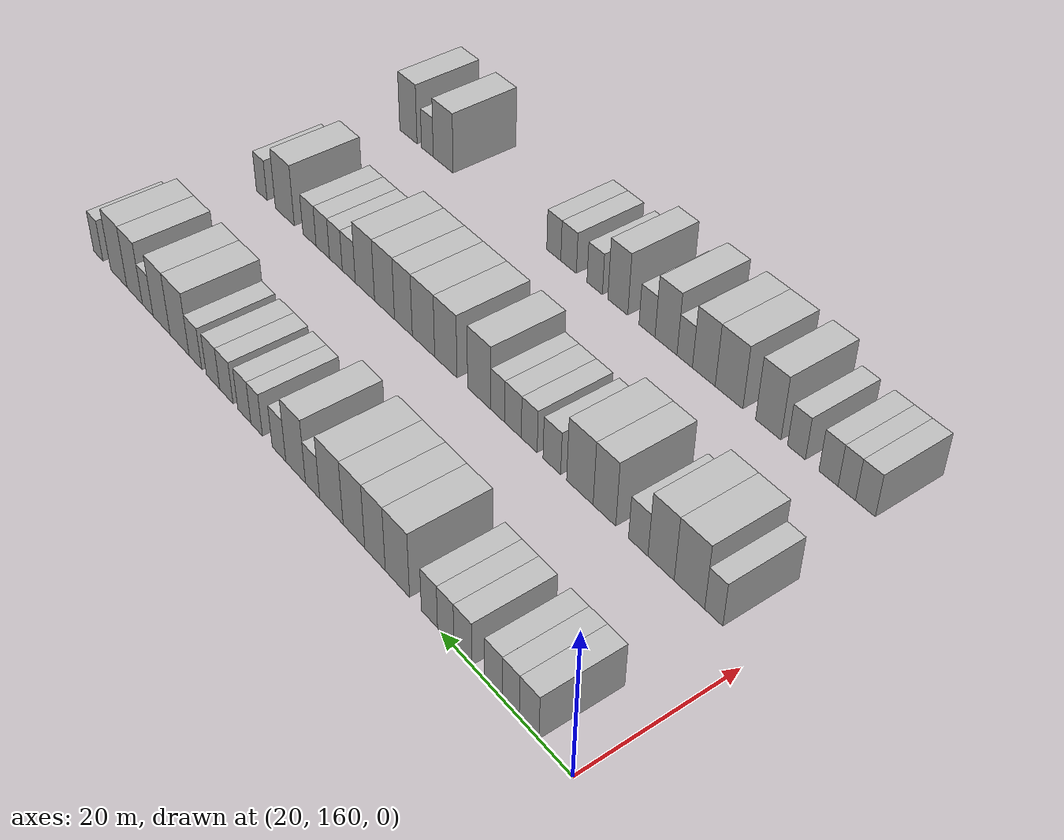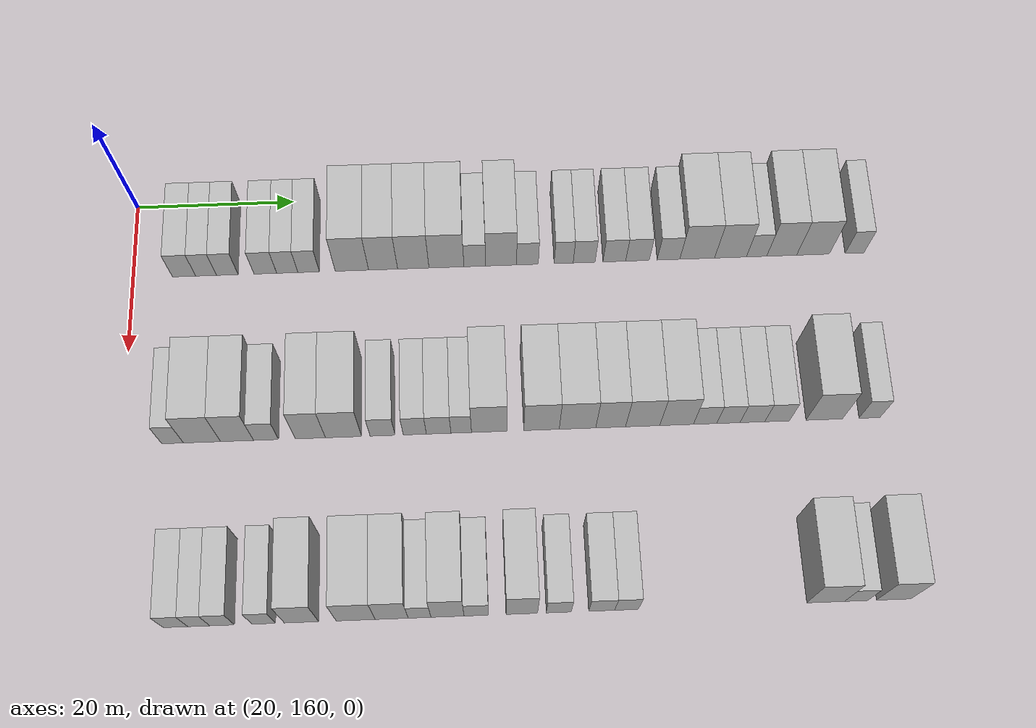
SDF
<sdf version="1.6">
 <world name="default">
  <model name="building_104">
   <static>1</static>
   <pose>25.0000 166.3553 0 0.000000 0.000000 0.000000</pose>
   <link name="link">
    <pose>0 0 3.00 0 0 0</pose>
    <collision name="collision"><geometry><box><size>10.0000 2.9161 6.0000</size></box></geometry></collision>
    <visual name="visual">
     <cast_shadows>0</cast_shadows>
     <geometry><box><size>10.0000 2.9161 6.0000</size></box></geometry>
     <material>
      <script>
       <uri>model://HANNAS_wall/materials/scripts</uri>
       <uri>model://HANNAS_wall/materials/textures</uri>
       <name>vrc/HANNAS_wall</name>
      </script>
     </material>
    </visual>
   </link>
  </model>
  <model name="building_105">
   <static>1</static>
   <pose>25.0000 169.1147 0 0.000000 0.000000 0.000000</pose>
   <link name="link">
    <pose>0 0 3.00 0 0 0</pose>
    <collision name="collision"><geometry><box><size>10.0000 2.6028 6.0000</size></box></geometry></collision>
    <visual name="visual">
     <cast_shadows>0</cast_shadows>
     <geometry><box><size>10.0000 2.6028 6.0000</size></box></geometry>
     <material>
      <script>
       <uri>model://HANNAS_wall/materials/scripts</uri>
       <uri>model://HANNAS_wall/materials/textures</uri>
       <name>vrc/HANNAS_wall</name>
      </script>
     </material>
    </visual>
   </link>
  </model>
  <model name="building_106">
   <static>1</static>
   <pose>25.0000 171.7800 0 0.000000 0.000000 0.000000</pose>
   <link name="link">
    <pose>0 0 3.00 0 0 0</pose>
    <collision name="collision"><geometry><box><size>10.0000 2.7277 6.0000</size></box></geometry></collision>
    <visual name="visual">
     <cast_shadows>0</cast_shadows>
     <geometry><box><size>10.0000 2.7277 6.0000</size></box></geometry>
     <material>
      <script>
       <uri>model://HANNAS_wall/materials/scripts</uri>
       <uri>model://HANNAS_wall/materials/textures</uri>
       <name>vrc/HANNAS_wall</name>
      </script>
     </material>
    </visual>
   </link>
  </model>
  <model name="building_107">
   <static>1</static>
   <pose>25.0000 176.5741 0 0.000000 0.000000 0.000000</pose>
   <link name="link">
    <pose>0 0 3.00 0 0 0</pose>
    <collision name="collision"><geometry><box><size>10.0000 2.8607 6.0000</size></box></geometry></collision>
    <visual name="visual">
     <cast_shadows>0</cast_shadows>
     <geometry><box><size>10.0000 2.8607 6.0000</size></box></geometry>
     <material>
      <script>
       <uri>model://HANNAS_wall/materials/scripts</uri>
       <uri>model://HANNAS_wall/materials/textures</uri>
       <name>vrc/HANNAS_wall</name>
      </script>
     </material>
    </visual>
   </link>
  </model>
  <model name="building_108">
   <static>1</static>
   <pose>25.0000 179.3434 0 0.000000 0.000000 0.000000</pose>
   <link name="link">
    <pose>0 0 3.00 0 0 0</pose>
    <collision name="collision"><geometry><box><size>10.0000 2.6778 6.0000</size></box></geometry></collision>
    <visual name="visual">
     <cast_shadows>0</cast_shadows>
     <geometry><box><size>10.0000 2.6778 6.0000</size></box></geometry>
     <material>
      <script>
       <uri>model://HANNAS_wall/materials/scripts</uri>
       <uri>model://HANNAS_wall/materials/textures</uri>
       <name>vrc/HANNAS_wall</name>
      </script>
     </material>
    </visual>
   </link>
  </model>
  <model name="building_109">
   <static>1</static>
   <pose>25.0000 182.0300 0 0.000000 0.000000 0.000000</pose>
   <link name="link">
    <pose>0 0 3.00 0 0 0</pose>
    <collision name="collision"><geometry><box><size>10.0000 2.6956 6.0000</size></box></geometry></collision>
    <visual name="visual">
     <cast_shadows>0</cast_shadows>
     <geometry><box><size>10.0000 2.6956 6.0000</size></box></geometry>
     <material>
      <script>
       <uri>model://HANNAS_wall/materials/scripts</uri>
       <uri>model://HANNAS_wall/materials/textures</uri>
       <name>vrc/HANNAS_wall</name>
      </script>
     </material>
    </visual>
   </link>
  </model>
  <model name="building_110">
   <static>1</static>
   <pose>25.0000 187.4806 0 0.000000 0.000000 0.000000</pose>
   <link name="link">
    <pose>0 0 4.50 0 0 0</pose>
    <collision name="collision"><geometry><box><size>10.0000 4.2055 9.0000</size></box></geometry></collision>
    <visual name="visual">
     <cast_shadows>0</cast_shadows>
     <geometry><box><size>10.0000 4.2055 9.0000</size></box></geometry>
     <material>
      <script>
       <uri>model://HANNAS_wall/materials/scripts</uri>
       <uri>model://HANNAS_wall/materials/textures</uri>
       <name>vrc/HANNAS_wall</name>
      </script>
     </material>
    </visual>
   </link>
  </model>
  <model name="building_111">
   <static>1</static>
   <pose>25.0000 191.4125 0 0.000000 0.000000 0.000000</pose>
   <link name="link">
    <pose>0 0 4.50 0 0 0</pose>
    <collision name="collision"><geometry><box><size>10.0000 3.6583 9.0000</size></box></geometry></collision>
    <visual name="visual">
     <cast_shadows>0</cast_shadows>
     <geometry><box><size>10.0000 3.6583 9.0000</size></box></geometry>
     <material>
      <script>
       <uri>model://HANNAS_wall/materials/scripts</uri>
       <uri>model://HANNAS_wall/materials/textures</uri>
       <name>vrc/HANNAS_wall</name>
      </script>
     </material>
    </visual>
   </link>
  </model>
  <model name="building_112">
   <static>1</static>
   <pose>25.0000 195.2253 0 0.000000 0.000000 0.000000</pose>
   <link name="link">
    <pose>0 0 4.50 0 0 0</pose>
    <collision name="collision"><geometry><box><size>10.0000 3.9674 9.0000</size></box></geometry></collision>
    <visual name="visual">
     <cast_shadows>0</cast_shadows>
     <geometry><box><size>10.0000 3.9674 9.0000</size></box></geometry>
     <material>
      <script>
       <uri>model://HANNAS_wall/materials/scripts</uri>
       <uri>model://HANNAS_wall/materials/textures</uri>
       <name>vrc/HANNAS_wall</name>
      </script>
     </material>
    </visual>
   </link>
  </model>
  <model name="building_113">
   <static>1</static>
   <pose>25.0000 199.4146 0 0.000000 0.000000 0.000000</pose>
   <link name="link">
    <pose>0 0 4.50 0 0 0</pose>
    <collision name="collision"><geometry><box><size>10.0000 4.4111 9.0000</size></box></geometry></collision>
    <visual name="visual">
     <cast_shadows>0</cast_shadows>
     <geometry><box><size>10.0000 4.4111 9.0000</size></box></geometry>
     <material>
      <script>
       <uri>model://HANNAS_wall/materials/scripts</uri>
       <uri>model://HANNAS_wall/materials/textures</uri>
       <name>vrc/HANNAS_wall</name>
      </script>
     </material>
    </visual>
   </link>
  </model>
  <model name="building_114">
   <static>1</static>
   <pose>25.0000 202.9931 0 0.000000 0.000000 0.000000</pose>
   <link name="link">
    <pose>0 0 3.00 0 0 0</pose>
    <collision name="collision"><geometry><box><size>10.0000 2.7460 6.0000</size></box></geometry></collision>
    <visual name="visual">
     <cast_shadows>0</cast_shadows>
     <geometry><box><size>10.0000 2.7460 6.0000</size></box></geometry>
     <material>
      <script>
       <uri>model://HANNAS_wall/materials/scripts</uri>
       <uri>model://HANNAS_wall/materials/textures</uri>
       <name>vrc/HANNAS_wall</name>
      </script>
     </material>
    </visual>
   </link>
  </model>
  <model name="building_115">
   <static>1</static>
   <pose>25.0000 206.3150 0 0.000000 0.000000 0.000000</pose>
   <link name="link">
    <pose>0 0 4.50 0 0 0</pose>
    <collision name="collision"><geometry><box><size>10.0000 3.8978 9.0000</size></box></geometry></collision>
    <visual name="visual">
     <cast_shadows>0</cast_shadows>
     <geometry><box><size>10.0000 3.8978 9.0000</size></box></geometry>
     <material>
      <script>
       <uri>model://HANNAS_wall/materials/scripts</uri>
       <uri>model://HANNAS_wall/materials/textures</uri>
       <name>vrc/HANNAS_wall</name>
      </script>
     </material>
    </visual>
   </link>
  </model>
  <model name="building_116">
   <static>1</static>
   <pose>25.0000 209.6416 0 0.000000 0.000000 0.000000</pose>
   <link name="link">
    <pose>0 0 3.00 0 0 0</pose>
    <collision name="collision"><geometry><box><size>10.0000 2.7554 6.0000</size></box></geometry></collision>
    <visual name="visual">
     <cast_shadows>0</cast_shadows>
     <geometry><box><size>10.0000 2.7554 6.0000</size></box></geometry>
     <material>
      <script>
       <uri>model://HANNAS_wall/materials/scripts</uri>
       <uri>model://HANNAS_wall/materials/textures</uri>
       <name>vrc/HANNAS_wall</name>
      </script>
     </material>
    </visual>
   </link>
  </model>
  <model name="building_117">
   <static>1</static>
   <pose>25.0000 214.2258 0 0.000000 0.000000 0.000000</pose>
   <link name="link">
    <pose>0 0 3.00 0 0 0</pose>
    <collision name="collision"><geometry><box><size>10.0000 2.4129 6.0000</size></box></geometry></collision>
    <visual name="visual">
     <cast_shadows>0</cast_shadows>
     <geometry><box><size>10.0000 2.4129 6.0000</size></box></geometry>
     <material>
      <script>
       <uri>model://HANNAS_wall/materials/scripts</uri>
       <uri>model://HANNAS_wall/materials/textures</uri>
       <name>vrc/HANNAS_wall</name>
      </script>
     </material>
    </visual>
   </link>
  </model>
  <model name="building_118">
   <static>1</static>
   <pose>25.0000 216.8191 0 0.000000 0.000000 0.000000</pose>
   <link name="link">
    <pose>0 0 3.00 0 0 0</pose>
    <collision name="collision"><geometry><box><size>10.0000 2.7737 6.0000</size></box></geometry></collision>
    <visual name="visual">
     <cast_shadows>0</cast_shadows>
     <geometry><box><size>10.0000 2.7737 6.0000</size></box></geometry>
     <material>
      <script>
       <uri>model://HANNAS_wall/materials/scripts</uri>
       <uri>model://HANNAS_wall/materials/textures</uri>
       <name>vrc/HANNAS_wall</name>
      </script>
     </material>
    </visual>
   </link>
  </model>
  <model name="building_119">
   <static>1</static>
   <pose>25.0000 220.6476 0 0.000000 0.000000 0.000000</pose>
   <link name="link">
    <pose>0 0 3.00 0 0 0</pose>
    <collision name="collision"><geometry><box><size>10.0000 2.8833 6.0000</size></box></geometry></collision>
    <visual name="visual">
     <cast_shadows>0</cast_shadows>
     <geometry><box><size>10.0000 2.8833 6.0000</size></box></geometry>
     <material>
      <script>
       <uri>model://HANNAS_wall/materials/scripts</uri>
       <uri>model://HANNAS_wall/materials/textures</uri>
       <name>vrc/HANNAS_wall</name>
      </script>
     </material>
    </visual>
   </link>
  </model>
  <model name="building_120">
   <static>1</static>
   <pose>25.0000 223.5836 0 0.000000 0.000000 0.000000</pose>
   <link name="link">
    <pose>0 0 3.00 0 0 0</pose>
    <collision name="collision"><geometry><box><size>10.0000 2.9889 6.0000</size></box></geometry></collision>
    <visual name="visual">
     <cast_shadows>0</cast_shadows>
     <geometry><box><size>10.0000 2.9889 6.0000</size></box></geometry>
     <material>
      <script>
       <uri>model://HANNAS_wall/materials/scripts</uri>
       <uri>model://HANNAS_wall/materials/textures</uri>
       <name>vrc/HANNAS_wall</name>
      </script>
     </material>
    </visual>
   </link>
  </model>
  <model name="building_121">
   <static>1</static>
   <pose>25.0000 227.5169 0 0.000000 0.000000 0.000000</pose>
   <link name="link">
    <pose>0 0 3.00 0 0 0</pose>
    <collision name="collision"><geometry><box><size>10.0000 2.8777 6.0000</size></box></geometry></collision>
    <visual name="visual">
     <cast_shadows>0</cast_shadows>
     <geometry><box><size>10.0000 2.8777 6.0000</size></box></geometry>
     <material>
      <script>
       <uri>model://HANNAS_wall/materials/scripts</uri>
       <uri>model://HANNAS_wall/materials/textures</uri>
       <name>vrc/HANNAS_wall</name>
      </script>
     </material>
    </visual>
   </link>
  </model>
  <model name="building_122">
   <static>1</static>
   <pose>25.0000 231.1664 0 0.000000 0.000000 0.000000</pose>
   <link name="link">
    <pose>0 0 4.50 0 0 0</pose>
    <collision name="collision"><geometry><box><size>10.0000 4.4213 9.0000</size></box></geometry></collision>
    <visual name="visual">
     <cast_shadows>0</cast_shadows>
     <geometry><box><size>10.0000 4.4213 9.0000</size></box></geometry>
     <material>
      <script>
       <uri>model://HANNAS_wall/materials/scripts</uri>
       <uri>model://HANNAS_wall/materials/textures</uri>
       <name>vrc/HANNAS_wall</name>
      </script>
     </material>
    </visual>
   </link>
  </model>
  <model name="building_123">
   <static>1</static>
   <pose>25.0000 235.3961 0 0.000000 0.000000 0.000000</pose>
   <link name="link">
    <pose>0 0 4.50 0 0 0</pose>
    <collision name="collision"><geometry><box><size>10.0000 4.0381 9.0000</size></box></geometry></collision>
    <visual name="visual">
     <cast_shadows>0</cast_shadows>
     <geometry><box><size>10.0000 4.0381 9.0000</size></box></geometry>
     <material>
      <script>
       <uri>model://HANNAS_wall/materials/scripts</uri>
       <uri>model://HANNAS_wall/materials/textures</uri>
       <name>vrc/HANNAS_wall</name>
      </script>
     </material>
    </visual>
   </link>
  </model>
  <model name="building_124">
   <static>1</static>
   <pose>25.0000 238.7110 0 0.000000 0.000000 0.000000</pose>
   <link name="link">
    <pose>0 0 3.00 0 0 0</pose>
    <collision name="collision"><geometry><box><size>10.0000 2.5919 6.0000</size></box></geometry></collision>
    <visual name="visual">
     <cast_shadows>0</cast_shadows>
     <geometry><box><size>10.0000 2.5919 6.0000</size></box></geometry>
     <material>
      <script>
       <uri>model://HANNAS_wall/materials/scripts</uri>
       <uri>model://HANNAS_wall/materials/textures</uri>
       <name>vrc/HANNAS_wall</name>
      </script>
     </material>
    </visual>
   </link>
  </model>
  <model name="building_125">
   <static>1</static>
   <pose>25.0000 241.9118 0 0.000000 0.000000 0.000000</pose>
   <link name="link">
    <pose>0 0 4.50 0 0 0</pose>
    <collision name="collision"><geometry><box><size>10.0000 3.8096 9.0000</size></box></geometry></collision>
    <visual name="visual">
     <cast_shadows>0</cast_shadows>
     <geometry><box><size>10.0000 3.8096 9.0000</size></box></geometry>
     <material>
      <script>
       <uri>model://HANNAS_wall/materials/scripts</uri>
       <uri>model://HANNAS_wall/materials/textures</uri>
       <name>vrc/HANNAS_wall</name>
      </script>
     </material>
    </visual>
   </link>
  </model>
  <model name="building_126">
   <static>1</static>
   <pose>25.0000 245.8992 0 0.000000 0.000000 0.000000</pose>
   <link name="link">
    <pose>0 0 4.50 0 0 0</pose>
    <collision name="collision"><geometry><box><size>10.0000 4.1652 9.0000</size></box></geometry></collision>
    <visual name="visual">
     <cast_shadows>0</cast_shadows>
     <geometry><box><size>10.0000 4.1652 9.0000</size></box></geometry>
     <material>
      <script>
       <uri>model://HANNAS_wall/materials/scripts</uri>
       <uri>model://HANNAS_wall/materials/textures</uri>
       <name>vrc/HANNAS_wall</name>
      </script>
     </material>
    </visual>
   </link>
  </model>
  <model name="building_127">
   <static>1</static>
   <pose>25.0000 251.1866 0 0.000000 0.000000 0.000000</pose>
   <link name="link">
    <pose>0 0 3.00 0 0 0</pose>
    <collision name="collision"><geometry><box><size>10.0000 2.4098 6.0000</size></box></geometry></collision>
    <visual name="visual">
     <cast_shadows>0</cast_shadows>
     <geometry><box><size>10.0000 2.4098 6.0000</size></box></geometry>
     <material>
      <script>
       <uri>model://HANNAS_wall/materials/scripts</uri>
       <uri>model://HANNAS_wall/materials/textures</uri>
       <name>vrc/HANNAS_wall</name>
      </script>
     </material>
    </visual>
   </link>
  </model>
  <model name="building_233">
   <static>1</static>
   <pose>47.0000 166.0406 0 0.000000 0.000000 0.000000</pose>
   <link name="link">
    <pose>0 0 3.00 0 0 0</pose>
    <collision name="collision"><geometry><box><size>10.0000 2.5984 6.0000</size></box></geometry></collision>
    <visual name="visual">
     <cast_shadows>0</cast_shadows>
     <geometry><box><size>10.0000 2.5984 6.0000</size></box></geometry>
     <material>
      <script>
       <uri>model://HANNAS_wall/materials/scripts</uri>
       <uri>model://HANNAS_wall/materials/textures</uri>
       <name>vrc/HANNAS_wall</name>
      </script>
     </material>
    </visual>
   </link>
  </model>
  <model name="building_234">
   <static>1</static>
   <pose>47.0000 169.5662 0 0.000000 0.000000 0.000000</pose>
   <link name="link">
    <pose>0 0 4.50 0 0 0</pose>
    <collision name="collision"><geometry><box><size>10.0000 4.4527 9.0000</size></box></geometry></collision>
    <visual name="visual">
     <cast_shadows>0</cast_shadows>
     <geometry><box><size>10.0000 4.4527 9.0000</size></box></geometry>
     <material>
      <script>
       <uri>model://HANNAS_wall/materials/scripts</uri>
       <uri>model://HANNAS_wall/materials/textures</uri>
       <name>vrc/HANNAS_wall</name>
      </script>
     </material>
    </visual>
   </link>
  </model>
  <model name="building_235">
   <static>1</static>
   <pose>47.0000 173.7640 0 0.000000 0.000000 0.000000</pose>
   <link name="link">
    <pose>0 0 4.50 0 0 0</pose>
    <collision name="collision"><geometry><box><size>10.0000 3.9429 9.0000</size></box></geometry></collision>
    <visual name="visual">
     <cast_shadows>0</cast_shadows>
     <geometry><box><size>10.0000 3.9429 9.0000</size></box></geometry>
     <material>
      <script>
       <uri>model://HANNAS_wall/materials/scripts</uri>
       <uri>model://HANNAS_wall/materials/textures</uri>
       <name>vrc/HANNAS_wall</name>
      </script>
     </material>
    </visual>
   </link>
  </model>
  <model name="building_236">
   <static>1</static>
   <pose>47.0000 177.2349 0 0.000000 0.000000 0.000000</pose>
   <link name="link">
    <pose>0 0 3.00 0 0 0</pose>
    <collision name="collision"><geometry><box><size>10.0000 2.9989 6.0000</size></box></geometry></collision>
    <visual name="visual">
     <cast_shadows>0</cast_shadows>
     <geometry><box><size>10.0000 2.9989 6.0000</size></box></geometry>
     <material>
      <script>
       <uri>model://HANNAS_wall/materials/scripts</uri>
       <uri>model://HANNAS_wall/materials/textures</uri>
       <name>vrc/HANNAS_wall</name>
      </script>
     </material>
    </visual>
   </link>
  </model>
  <model name="building_237">
   <static>1</static>
   <pose>47.0000 182.5463 0 0.000000 0.000000 0.000000</pose>
   <link name="link">
    <pose>0 0 4.50 0 0 0</pose>
    <collision name="collision"><geometry><box><size>10.0000 3.6238 9.0000</size></box></geometry></collision>
    <visual name="visual">
     <cast_shadows>0</cast_shadows>
     <geometry><box><size>10.0000 3.6238 9.0000</size></box></geometry>
     <material>
      <script>
       <uri>model://HANNAS_wall/materials/scripts</uri>
       <uri>model://HANNAS_wall/materials/textures</uri>
       <name>vrc/HANNAS_wall</name>
      </script>
     </material>
    </visual>
   </link>
  </model>
  <model name="building_238">
   <static>1</static>
   <pose>47.0000 186.5380 0 0.000000 0.000000 0.000000</pose>
   <link name="link">
    <pose>0 0 4.50 0 0 0</pose>
    <collision name="collision"><geometry><box><size>10.0000 4.3597 9.0000</size></box></geometry></collision>
    <visual name="visual">
     <cast_shadows>0</cast_shadows>
     <geometry><box><size>10.0000 4.3597 9.0000</size></box></geometry>
     <material>
      <script>
       <uri>model://HANNAS_wall/materials/scripts</uri>
       <uri>model://HANNAS_wall/materials/textures</uri>
       <name>vrc/HANNAS_wall</name>
      </script>
     </material>
    </visual>
   </link>
  </model>
  <model name="building_239">
   <static>1</static>
   <pose>47.0000 191.2173 0 0.000000 0.000000 0.000000</pose>
   <link name="link">
    <pose>0 0 3.00 0 0 0</pose>
    <collision name="collision"><geometry><box><size>10.0000 2.9989 6.0000</size></box></geometry></collision>
    <visual name="visual">
     <cast_shadows>0</cast_shadows>
     <geometry><box><size>10.0000 2.9989 6.0000</size></box></geometry>
     <material>
      <script>
       <uri>model://HANNAS_wall/materials/scripts</uri>
       <uri>model://HANNAS_wall/materials/textures</uri>
       <name>vrc/HANNAS_wall</name>
      </script>
     </material>
    </visual>
   </link>
  </model>
  <model name="building_240">
   <static>1</static>
   <pose>47.0000 195.1013 0 0.000000 0.000000 0.000000</pose>
   <link name="link">
    <pose>0 0 3.00 0 0 0</pose>
    <collision name="collision"><geometry><box><size>10.0000 2.7693 6.0000</size></box></geometry></collision>
    <visual name="visual">
     <cast_shadows>0</cast_shadows>
     <geometry><box><size>10.0000 2.7693 6.0000</size></box></geometry>
     <material>
      <script>
       <uri>model://HANNAS_wall/materials/scripts</uri>
       <uri>model://HANNAS_wall/materials/textures</uri>
       <name>vrc/HANNAS_wall</name>
      </script>
     </material>
    </visual>
   </link>
  </model>
  <model name="building_241">
   <static>1</static>
   <pose>47.0000 197.9679 0 0.000000 0.000000 0.000000</pose>
   <link name="link">
    <pose>0 0 3.00 0 0 0</pose>
    <collision name="collision"><geometry><box><size>10.0000 2.9639 6.0000</size></box></geometry></collision>
    <visual name="visual">
     <cast_shadows>0</cast_shadows>
     <geometry><box><size>10.0000 2.9639 6.0000</size></box></geometry>
     <material>
      <script>
       <uri>model://HANNAS_wall/materials/scripts</uri>
       <uri>model://HANNAS_wall/materials/textures</uri>
       <name>vrc/HANNAS_wall</name>
      </script>
     </material>
    </visual>
   </link>
  </model>
  <model name="building_242">
   <static>1</static>
   <pose>47.0000 200.6821 0 0.000000 0.000000 0.000000</pose>
   <link name="link">
    <pose>0 0 3.00 0 0 0</pose>
    <collision name="collision"><geometry><box><size>10.0000 2.4645 6.0000</size></box></geometry></collision>
    <visual name="visual">
     <cast_shadows>0</cast_shadows>
     <geometry><box><size>10.0000 2.4645 6.0000</size></box></geometry>
     <material>
      <script>
       <uri>model://HANNAS_wall/materials/scripts</uri>
       <uri>model://HANNAS_wall/materials/textures</uri>
       <name>vrc/HANNAS_wall</name>
      </script>
     </material>
    </visual>
   </link>
  </model>
  <model name="building_243">
   <static>1</static>
   <pose>47.0000 204.0628 0 0.000000 0.000000 0.000000</pose>
   <link name="link">
    <pose>0 0 4.50 0 0 0</pose>
    <collision name="collision"><geometry><box><size>10.0000 4.2971 9.0000</size></box></geometry></collision>
    <visual name="visual">
     <cast_shadows>0</cast_shadows>
     <geometry><box><size>10.0000 4.2971 9.0000</size></box></geometry>
     <material>
      <script>
       <uri>model://HANNAS_wall/materials/scripts</uri>
       <uri>model://HANNAS_wall/materials/textures</uri>
       <name>vrc/HANNAS_wall</name>
      </script>
     </material>
    </visual>
   </link>
  </model>
  <model name="building_244">
   <static>1</static>
   <pose>47.0000 210.3467 0 0.000000 0.000000 0.000000</pose>
   <link name="link">
    <pose>0 0 4.50 0 0 0</pose>
    <collision name="collision"><geometry><box><size>10.0000 4.2707 9.0000</size></box></geometry></collision>
    <visual name="visual">
     <cast_shadows>0</cast_shadows>
     <geometry><box><size>10.0000 4.2707 9.0000</size></box></geometry>
     <material>
      <script>
       <uri>model://HANNAS_wall/materials/scripts</uri>
       <uri>model://HANNAS_wall/materials/textures</uri>
       <name>vrc/HANNAS_wall</name>
      </script>
     </material>
    </visual>
   </link>
  </model>
  <model name="building_245">
   <static>1</static>
   <pose>47.0000 214.6873 0 0.000000 0.000000 0.000000</pose>
   <link name="link">
    <pose>0 0 4.50 0 0 0</pose>
    <collision name="collision"><geometry><box><size>10.0000 4.4104 9.0000</size></box></geometry></collision>
    <visual name="visual">
     <cast_shadows>0</cast_shadows>
     <geometry><box><size>10.0000 4.4104 9.0000</size></box></geometry>
     <material>
      <script>
       <uri>model://HANNAS_wall/materials/scripts</uri>
       <uri>model://HANNAS_wall/materials/textures</uri>
       <name>vrc/HANNAS_wall</name>
      </script>
     </material>
    </visual>
   </link>
  </model>
  <model name="building_246">
   <static>1</static>
   <pose>47.0000 218.6931 0 0.000000 0.000000 0.000000</pose>
   <link name="link">
    <pose>0 0 4.50 0 0 0</pose>
    <collision name="collision"><geometry><box><size>10.0000 3.6014 9.0000</size></box></geometry></collision>
    <visual name="visual">
     <cast_shadows>0</cast_shadows>
     <geometry><box><size>10.0000 3.6014 9.0000</size></box></geometry>
     <material>
      <script>
       <uri>model://HANNAS_wall/materials/scripts</uri>
       <uri>model://HANNAS_wall/materials/textures</uri>
       <name>vrc/HANNAS_wall</name>
      </script>
     </material>
    </visual>
   </link>
  </model>
  <model name="building_247">
   <static>1</static>
   <pose>47.0000 222.5602 0 0.000000 0.000000 0.000000</pose>
   <link name="link">
    <pose>0 0 4.50 0 0 0</pose>
    <collision name="collision"><geometry><box><size>10.0000 4.1328 9.0000</size></box></geometry></collision>
    <visual name="visual">
     <cast_shadows>0</cast_shadows>
     <geometry><box><size>10.0000 4.1328 9.0000</size></box></geometry>
     <material>
      <script>
       <uri>model://HANNAS_wall/materials/scripts</uri>
       <uri>model://HANNAS_wall/materials/textures</uri>
       <name>vrc/HANNAS_wall</name>
      </script>
     </material>
    </visual>
   </link>
  </model>
  <model name="building_248">
   <static>1</static>
   <pose>47.0000 226.6619 0 0.000000 0.000000 0.000000</pose>
   <link name="link">
    <pose>0 0 4.50 0 0 0</pose>
    <collision name="collision"><geometry><box><size>10.0000 4.0706 9.0000</size></box></geometry></collision>
    <visual name="visual">
     <cast_shadows>0</cast_shadows>
     <geometry><box><size>10.0000 4.0706 9.0000</size></box></geometry>
     <material>
      <script>
       <uri>model://HANNAS_wall/materials/scripts</uri>
       <uri>model://HANNAS_wall/materials/textures</uri>
       <name>vrc/HANNAS_wall</name>
      </script>
     </material>
    </visual>
   </link>
  </model>
  <model name="building_249">
   <static>1</static>
   <pose>47.0000 230.1124 0 0.000000 0.000000 0.000000</pose>
   <link name="link">
    <pose>0 0 3.00 0 0 0</pose>
    <collision name="collision"><geometry><box><size>10.0000 2.8306 6.0000</size></box></geometry></collision>
    <visual name="visual">
     <cast_shadows>0</cast_shadows>
     <geometry><box><size>10.0000 2.8306 6.0000</size></box></geometry>
     <material>
      <script>
       <uri>model://HANNAS_wall/materials/scripts</uri>
       <uri>model://HANNAS_wall/materials/textures</uri>
       <name>vrc/HANNAS_wall</name>
      </script>
     </material>
    </visual>
   </link>
  </model>
  <model name="building_250">
   <static>1</static>
   <pose>47.0000 232.9358 0 0.000000 0.000000 0.000000</pose>
   <link name="link">
    <pose>0 0 3.00 0 0 0</pose>
    <collision name="collision"><geometry><box><size>10.0000 2.8161 6.0000</size></box></geometry></collision>
    <visual name="visual">
     <cast_shadows>0</cast_shadows>
     <geometry><box><size>10.0000 2.8161 6.0000</size></box></geometry>
     <material>
      <script>
       <uri>model://HANNAS_wall/materials/scripts</uri>
       <uri>model://HANNAS_wall/materials/textures</uri>
       <name>vrc/HANNAS_wall</name>
      </script>
     </material>
    </visual>
   </link>
  </model>
  <model name="building_251">
   <static>1</static>
   <pose>47.0000 235.8433 0 0.000000 0.000000 0.000000</pose>
   <link name="link">
    <pose>0 0 3.00 0 0 0</pose>
    <collision name="collision"><geometry><box><size>10.0000 2.9989 6.0000</size></box></geometry></collision>
    <visual name="visual">
     <cast_shadows>0</cast_shadows>
     <geometry><box><size>10.0000 2.9989 6.0000</size></box></geometry>
     <material>
      <script>
       <uri>model://HANNAS_wall/materials/scripts</uri>
       <uri>model://HANNAS_wall/materials/textures</uri>
       <name>vrc/HANNAS_wall</name>
      </script>
     </material>
    </visual>
   </link>
  </model>
  <model name="building_252">
   <static>1</static>
   <pose>47.0000 238.8404 0 0.000000 0.000000 0.000000</pose>
   <link name="link">
    <pose>0 0 3.00 0 0 0</pose>
    <collision name="collision"><geometry><box><size>10.0000 2.9952 6.0000</size></box></geometry></collision>
    <visual name="visual">
     <cast_shadows>0</cast_shadows>
     <geometry><box><size>10.0000 2.9952 6.0000</size></box></geometry>
     <material>
      <script>
       <uri>model://HANNAS_wall/materials/scripts</uri>
       <uri>model://HANNAS_wall/materials/textures</uri>
       <name>vrc/HANNAS_wall</name>
      </script>
     </material>
    </visual>
   </link>
  </model>
  <model name="building_253">
   <static>1</static>
   <pose>47.0000 244.5574 0 0.000000 0.000000 0.000000</pose>
   <link name="link">
    <pose>0 0 4.50 0 0 0</pose>
    <collision name="collision"><geometry><box><size>10.0000 4.4388 9.0000</size></box></geometry></collision>
    <visual name="visual">
     <cast_shadows>0</cast_shadows>
     <geometry><box><size>10.0000 4.4388 9.0000</size></box></geometry>
     <material>
      <script>
       <uri>model://HANNAS_wall/materials/scripts</uri>
       <uri>model://HANNAS_wall/materials/textures</uri>
       <name>vrc/HANNAS_wall</name>
      </script>
     </material>
    </visual>
   </link>
  </model>
  <model name="building_254">
   <static>1</static>
   <pose>47.0000 250.0612 0 0.000000 0.000000 0.000000</pose>
   <link name="link">
    <pose>0 0 3.00 0 0 0</pose>
    <collision name="collision"><geometry><box><size>10.0000 2.5688 6.0000</size></box></geometry></collision>
    <visual name="visual">
     <cast_shadows>0</cast_shadows>
     <geometry><box><size>10.0000 2.5688 6.0000</size></box></geometry>
     <material>
      <script>
       <uri>model://HANNAS_wall/materials/scripts</uri>
       <uri>model://HANNAS_wall/materials/textures</uri>
       <name>vrc/HANNAS_wall</name>
      </script>
     </material>
    </visual>
   </link>
  </model>
  <model name="building_363">
   <static>1</static>
   <pose>69.0000 167.5098 0 0.000000 0.000000 0.000000</pose>
   <link name="link">
    <pose>0 0 3.00 0 0 0</pose>
    <collision name="collision"><geometry><box><size>10.0000 2.7956 6.0000</size></box></geometry></collision>
    <visual name="visual">
     <cast_shadows>0</cast_shadows>
     <geometry><box><size>10.0000 2.7956 6.0000</size></box></geometry>
     <material>
      <script>
       <uri>model://HANNAS_wall/materials/scripts</uri>
       <uri>model://HANNAS_wall/materials/textures</uri>
       <name>vrc/HANNAS_wall</name>
      </script>
     </material>
    </visual>
   </link>
  </model>
  <model name="building_364">
   <static>1</static>
   <pose>69.0000 170.1571 0 0.000000 0.000000 0.000000</pose>
   <link name="link">
    <pose>0 0 3.00 0 0 0</pose>
    <collision name="collision"><geometry><box><size>10.0000 2.4990 6.0000</size></box></geometry></collision>
    <visual name="visual">
     <cast_shadows>0</cast_shadows>
     <geometry><box><size>10.0000 2.4990 6.0000</size></box></geometry>
     <material>
      <script>
       <uri>model://HANNAS_wall/materials/scripts</uri>
       <uri>model://HANNAS_wall/materials/textures</uri>
       <name>vrc/HANNAS_wall</name>
      </script>
     </material>
    </visual>
   </link>
  </model>
  <model name="building_365">
   <static>1</static>
   <pose>69.0000 172.8031 0 0.000000 0.000000 0.000000</pose>
   <link name="link">
    <pose>0 0 3.00 0 0 0</pose>
    <collision name="collision"><geometry><box><size>10.0000 2.7930 6.0000</size></box></geometry></collision>
    <visual name="visual">
     <cast_shadows>0</cast_shadows>
     <geometry><box><size>10.0000 2.7930 6.0000</size></box></geometry>
     <material>
      <script>
       <uri>model://HANNAS_wall/materials/scripts</uri>
       <uri>model://HANNAS_wall/materials/textures</uri>
       <name>vrc/HANNAS_wall</name>
      </script>
     </material>
    </visual>
   </link>
  </model>
  <model name="building_366">
   <static>1</static>
   <pose>69.0000 177.5454 0 0.000000 0.000000 0.000000</pose>
   <link name="link">
    <pose>0 0 3.00 0 0 0</pose>
    <collision name="collision"><geometry><box><size>10.0000 2.6916 6.0000</size></box></geometry></collision>
    <visual name="visual">
     <cast_shadows>0</cast_shadows>
     <geometry><box><size>10.0000 2.6916 6.0000</size></box></geometry>
     <material>
      <script>
       <uri>model://HANNAS_wall/materials/scripts</uri>
       <uri>model://HANNAS_wall/materials/textures</uri>
       <name>vrc/HANNAS_wall</name>
      </script>
     </material>
    </visual>
   </link>
  </model>
  <model name="building_367">
   <static>1</static>
   <pose>69.0000 181.8514 0 0.000000 0.000000 0.000000</pose>
   <link name="link">
    <pose>0 0 4.50 0 0 0</pose>
    <collision name="collision"><geometry><box><size>10.0000 3.9204 9.0000</size></box></geometry></collision>
    <visual name="visual">
     <cast_shadows>0</cast_shadows>
     <geometry><box><size>10.0000 3.9204 9.0000</size></box></geometry>
     <material>
      <script>
       <uri>model://HANNAS_wall/materials/scripts</uri>
       <uri>model://HANNAS_wall/materials/textures</uri>
       <name>vrc/HANNAS_wall</name>
      </script>
     </material>
    </visual>
   </link>
  </model>
  <model name="building_368">
   <static>1</static>
   <pose>69.0000 188.0409 0 0.000000 0.000000 0.000000</pose>
   <link name="link">
    <pose>0 0 4.50 0 0 0</pose>
    <collision name="collision"><geometry><box><size>10.0000 4.4586 9.0000</size></box></geometry></collision>
    <visual name="visual">
     <cast_shadows>0</cast_shadows>
     <geometry><box><size>10.0000 4.4586 9.0000</size></box></geometry>
     <material>
      <script>
       <uri>model://HANNAS_wall/materials/scripts</uri>
       <uri>model://HANNAS_wall/materials/textures</uri>
       <name>vrc/HANNAS_wall</name>
      </script>
     </material>
    </visual>
   </link>
  </model>
  <model name="building_369">
   <static>1</static>
   <pose>69.0000 192.1534 0 0.000000 0.000000 0.000000</pose>
   <link name="link">
    <pose>0 0 4.50 0 0 0</pose>
    <collision name="collision"><geometry><box><size>10.0000 3.7665 9.0000</size></box></geometry></collision>
    <visual name="visual">
     <cast_shadows>0</cast_shadows>
     <geometry><box><size>10.0000 3.7665 9.0000</size></box></geometry>
     <material>
      <script>
       <uri>model://HANNAS_wall/materials/scripts</uri>
       <uri>model://HANNAS_wall/materials/textures</uri>
       <name>vrc/HANNAS_wall</name>
      </script>
     </material>
    </visual>
   </link>
  </model>
  <model name="building_370">
   <static>1</static>
   <pose>69.0000 195.3352 0 0.000000 0.000000 0.000000</pose>
   <link name="link">
    <pose>0 0 3.00 0 0 0</pose>
    <collision name="collision"><geometry><box><size>10.0000 2.5970 6.0000</size></box></geometry></collision>
    <visual name="visual">
     <cast_shadows>0</cast_shadows>
     <geometry><box><size>10.0000 2.5970 6.0000</size></box></geometry>
     <material>
      <script>
       <uri>model://HANNAS_wall/materials/scripts</uri>
       <uri>model://HANNAS_wall/materials/textures</uri>
       <name>vrc/HANNAS_wall</name>
      </script>
     </material>
    </visual>
   </link>
  </model>
  <model name="building_371">
   <static>1</static>
   <pose>69.0000 198.5241 0 0.000000 0.000000 0.000000</pose>
   <link name="link">
    <pose>0 0 4.50 0 0 0</pose>
    <collision name="collision"><geometry><box><size>10.0000 3.7808 9.0000</size></box></geometry></collision>
    <visual name="visual">
     <cast_shadows>0</cast_shadows>
     <geometry><box><size>10.0000 3.7808 9.0000</size></box></geometry>
     <material>
      <script>
       <uri>model://HANNAS_wall/materials/scripts</uri>
       <uri>model://HANNAS_wall/materials/textures</uri>
       <name>vrc/HANNAS_wall</name>
      </script>
     </material>
    </visual>
   </link>
  </model>
  <model name="building_372">
   <static>1</static>
   <pose>69.0000 201.8156 0 0.000000 0.000000 0.000000</pose>
   <link name="link">
    <pose>0 0 3.00 0 0 0</pose>
    <collision name="collision"><geometry><box><size>10.0000 2.8022 6.0000</size></box></geometry></collision>
    <visual name="visual">
     <cast_shadows>0</cast_shadows>
     <geometry><box><size>10.0000 2.8022 6.0000</size></box></geometry>
     <material>
      <script>
       <uri>model://HANNAS_wall/materials/scripts</uri>
       <uri>model://HANNAS_wall/materials/textures</uri>
       <name>vrc/HANNAS_wall</name>
      </script>
     </material>
    </visual>
   </link>
  </model>
  <model name="building_373">
   <static>1</static>
   <pose>69.0000 207.0204 0 0.000000 0.000000 0.000000</pose>
   <link name="link">
    <pose>0 0 4.50 0 0 0</pose>
    <collision name="collision"><geometry><box><size>10.0000 3.6074 9.0000</size></box></geometry></collision>
    <visual name="visual">
     <cast_shadows>0</cast_shadows>
     <geometry><box><size>10.0000 3.6074 9.0000</size></box></geometry>
     <material>
      <script>
       <uri>model://HANNAS_wall/materials/scripts</uri>
       <uri>model://HANNAS_wall/materials/textures</uri>
       <name>vrc/HANNAS_wall</name>
      </script>
     </material>
    </visual>
   </link>
  </model>
  <model name="building_374">
   <static>1</static>
   <pose>69.0000 211.2553 0 0.000000 0.000000 0.000000</pose>
   <link name="link">
    <pose>0 0 3.00 0 0 0</pose>
    <collision name="collision"><geometry><box><size>10.0000 2.8625 6.0000</size></box></geometry></collision>
    <visual name="visual">
     <cast_shadows>0</cast_shadows>
     <geometry><box><size>10.0000 2.8625 6.0000</size></box></geometry>
     <material>
      <script>
       <uri>model://HANNAS_wall/materials/scripts</uri>
       <uri>model://HANNAS_wall/materials/textures</uri>
       <name>vrc/HANNAS_wall</name>
      </script>
     </material>
    </visual>
   </link>
  </model>
  <model name="building_375">
   <static>1</static>
   <pose>69.0000 216.1732 0 0.000000 0.000000 0.000000</pose>
   <link name="link">
    <pose>0 0 3.00 0 0 0</pose>
    <collision name="collision"><geometry><box><size>10.0000 2.9732 6.0000</size></box></geometry></collision>
    <visual name="visual">
     <cast_shadows>0</cast_shadows>
     <geometry><box><size>10.0000 2.9732 6.0000</size></box></geometry>
     <material>
      <script>
       <uri>model://HANNAS_wall/materials/scripts</uri>
       <uri>model://HANNAS_wall/materials/textures</uri>
       <name>vrc/HANNAS_wall</name>
      </script>
     </material>
    </visual>
   </link>
  </model>
  <model name="building_376">
   <static>1</static>
   <pose>69.0000 219.0220 0 0.000000 0.000000 0.000000</pose>
   <link name="link">
    <pose>0 0 3.00 0 0 0</pose>
    <collision name="collision"><geometry><box><size>10.0000 2.7245 6.0000</size></box></geometry></collision>
    <visual name="visual">
     <cast_shadows>0</cast_shadows>
     <geometry><box><size>10.0000 2.7245 6.0000</size></box></geometry>
     <material>
      <script>
       <uri>model://HANNAS_wall/materials/scripts</uri>
       <uri>model://HANNAS_wall/materials/textures</uri>
       <name>vrc/HANNAS_wall</name>
      </script>
     </material>
    </visual>
   </link>
  </model>
  <model name="building_377">
   <static>1</static>
   <pose>69.0000 241.9594 0 0.000000 0.000000 0.000000</pose>
   <link name="link">
    <pose>0 0 4.50 0 0 0</pose>
    <collision name="collision"><geometry><box><size>10.0000 4.3834 9.0000</size></box></geometry></collision>
    <visual name="visual">
     <cast_shadows>0</cast_shadows>
     <geometry><box><size>10.0000 4.3834 9.0000</size></box></geometry>
     <material>
      <script>
       <uri>model://HANNAS_wall/materials/scripts</uri>
       <uri>model://HANNAS_wall/materials/textures</uri>
       <name>vrc/HANNAS_wall</name>
      </script>
     </material>
    </visual>
   </link>
  </model>
  <model name="building_378">
   <static>1</static>
   <pose>69.0000 245.4767 0 0.000000 0.000000 0.000000</pose>
   <link name="link">
    <pose>0 0 3.00 0 0 0</pose>
    <collision name="collision"><geometry><box><size>10.0000 2.6512 6.0000</size></box></geometry></collision>
    <visual name="visual">
     <cast_shadows>0</cast_shadows>
     <geometry><box><size>10.0000 2.6512 6.0000</size></box></geometry>
     <material>
      <script>
       <uri>model://HANNAS_wall/materials/scripts</uri>
       <uri>model://HANNAS_wall/materials/textures</uri>
       <name>vrc/HANNAS_wall</name>
      </script>
     </material>
    </visual>
   </link>
  </model>
  <model name="building_379">
   <static>1</static>
   <pose>69.0000 249.7902 0 0.000000 0.000000 0.000000</pose>
   <link name="link">
    <pose>0 0 4.50 0 0 0</pose>
    <collision name="collision"><geometry><box><size>10.0000 3.9756 9.0000</size></box></geometry></collision>
    <visual name="visual">
     <cast_shadows>0</cast_shadows>
     <geometry><box><size>10.0000 3.9756 9.0000</size></box></geometry>
     <material>
      <script>
       <uri>model://HANNAS_wall/materials/scripts</uri>
       <uri>model://HANNAS_wall/materials/textures</uri>
       <name>vrc/HANNAS_wall</name>
      </script>
     </material>
    </visual>
   </link>
  </model>
 </world>
</sdf>
